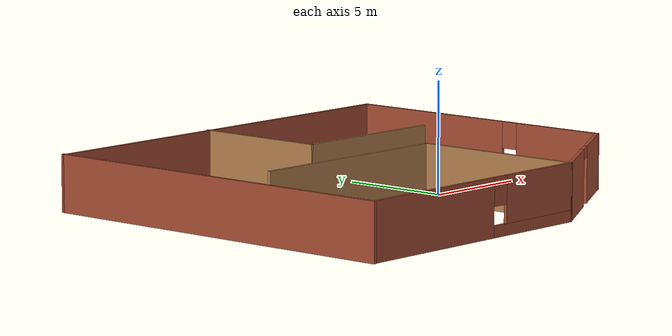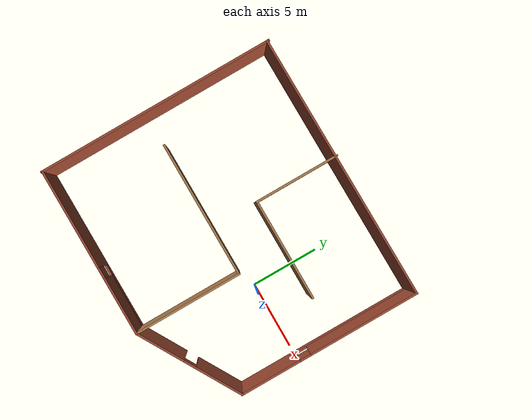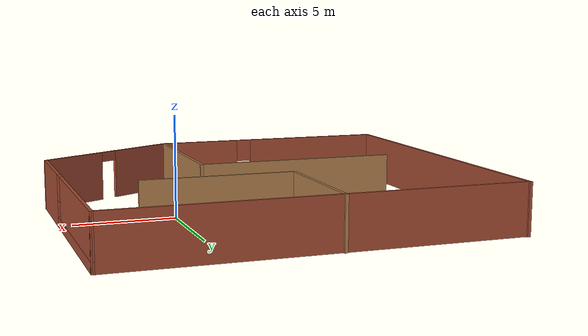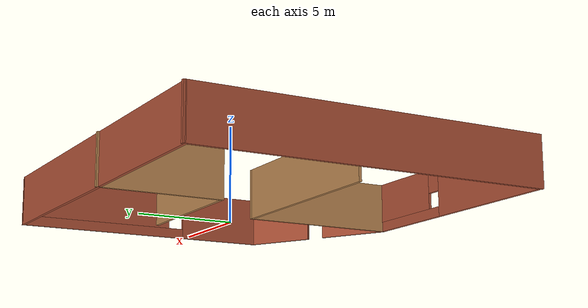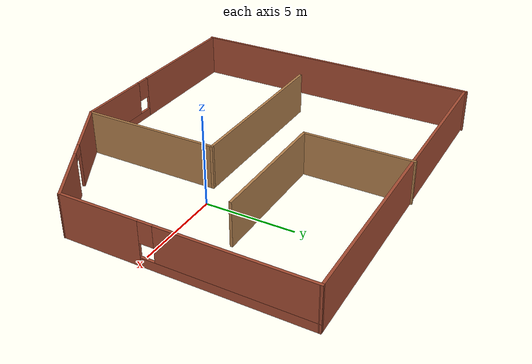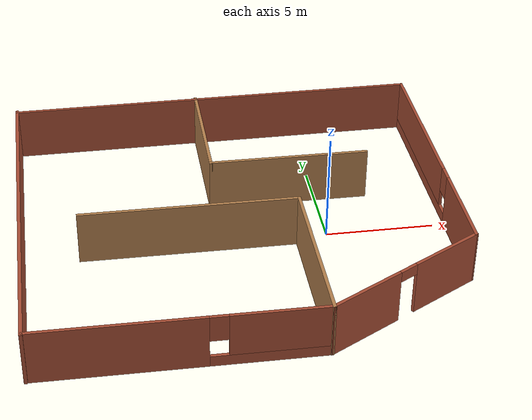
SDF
<?xml version='1.0'?>
<sdf version='1.6'>
  <model name='house'>
    <pose frame=''>-4.10834 0.329778 0 0 -0 0</pose>
    <link name='Wall_46'>
      <pose frame=''>-3.49095 -8.67909 0 0 -0 0</pose>
      <visual name='Wall_46_Visual_0'>
        <pose frame=''>-2.556 0 1.25 0 -0 0</pose>
        <geometry>
          <box>
            <size>7.38799 0.15 2.5</size>
          </box>
        </geometry>
        <material>
          <script>
            <uri>file://media/materials/scripts/gazebo.material</uri>
            <name>Gazebo/Bricks</name>
          </script>
          <ambient>0.643137 0 0 1</ambient>
        </material>
        <meta>
          <layer>0</layer>
        </meta>
      </visual>
      <collision name='Wall_46_Collision_0'>
        <geometry>
          <box>
            <size>7.38799 0.15 2.5</size>
          </box>
        </geometry>
        <pose frame=''>-2.556 0 1.25 0 -0 0</pose>
      </collision>
      <visual name='Wall_46_Visual_1'>
        <pose frame=''>3.694 0 0.25 0 -0 0</pose>
        <geometry>
          <box>
            <size>5.11201 0.15 0.5</size>
          </box>
        </geometry>
        <material>
          <script>
            <uri>file://media/materials/scripts/gazebo.material</uri>
            <name>Gazebo/Bricks</name>
          </script>
          <ambient>0.643137 0 0 1</ambient>
        </material>
        <meta>
          <layer>0</layer>
        </meta>
      </visual>
      <collision name='Wall_46_Collision_1'>
        <geometry>
          <box>
            <size>5.11201 0.15 0.5</size>
          </box>
        </geometry>
        <pose frame=''>3.694 0 0.25 0 -0 0</pose>
      </collision>
      <visual name='Wall_46_Visual_2'>
        <pose frame=''>4.094 0 1.5 0 -0 0</pose>
        <geometry>
          <box>
            <size>4.31201 0.15 2</size>
          </box>
        </geometry>
        <material>
          <script>
            <uri>file://media/materials/scripts/gazebo.material</uri>
            <name>Gazebo/Bricks</name>
          </script>
          <ambient>0.643137 0 0 1</ambient>
        </material>
        <meta>
          <layer>0</layer>
        </meta>
      </visual>
      <collision name='Wall_46_Collision_2'>
        <geometry>
          <box>
            <size>4.31201 0.15 2</size>
          </box>
        </geometry>
        <pose frame=''>4.094 0 1.5 0 -0 0</pose>
      </collision>
      <visual name='Wall_46_Visual_3'>
        <pose frame=''>1.53799 0 1.9 0 -0 0</pose>
        <geometry>
          <box>
            <size>0.8 0.15 1.2</size>
          </box>
        </geometry>
        <material>
          <script>
            <uri>file://media/materials/scripts/gazebo.material</uri>
            <name>Gazebo/Bricks</name>
          </script>
          <ambient>0.643137 0 0 1</ambient>
        </material>
        <meta>
          <layer>0</layer>
        </meta>
      </visual>
      <collision name='Wall_46_Collision_3'>
        <geometry>
          <box>
            <size>0.8 0.15 1.2</size>
          </box>
        </geometry>
        <pose frame=''>1.53799 0 1.9 0 -0 0</pose>
      </collision>
    </link>
    <link name='Wall_47'>
      <pose frame=''>6.19145 -6.65409 0 0 -0 0.523599</pose>
      <visual name='Wall_47_Visual_0'>
        <pose frame=''>-2.2694 0 1.25 0 -0 0</pose>
        <geometry>
          <box>
            <size>3.71119 0.15 2.5</size>
          </box>
        </geometry>
        <material>
          <script>
            <uri>file://media/materials/scripts/gazebo.material</uri>
            <name>Gazebo/Bricks</name>
          </script>
          <ambient>0.643137 0 0 1</ambient>
        </material>
        <meta>
          <layer>0</layer>
        </meta>
      </visual>
      <collision name='Wall_47_Collision_0'>
        <geometry>
          <box>
            <size>3.71119 0.15 2.5</size>
          </box>
        </geometry>
        <pose frame=''>-2.2694 0 1.25 0 -0 0</pose>
      </collision>
      <visual name='Wall_47_Visual_1'>
        <pose frame=''>2.30559 0 1.25 0 -0 0</pose>
        <geometry>
          <box>
            <size>3.63881 0.15 2.5</size>
          </box>
        </geometry>
        <material>
          <script>
            <uri>file://media/materials/scripts/gazebo.material</uri>
            <name>Gazebo/Bricks</name>
          </script>
          <ambient>0.643137 0 0 1</ambient>
        </material>
        <meta>
          <layer>0</layer>
        </meta>
      </visual>
      <collision name='Wall_47_Collision_1'>
        <geometry>
          <box>
            <size>3.63881 0.15 2.5</size>
          </box>
        </geometry>
        <pose frame=''>2.30559 0 1.25 0 -0 0</pose>
      </collision>
      <visual name='Wall_47_Visual_2'>
        <pose frame=''>0.036191 0 2.25 0 -0 0</pose>
        <geometry>
          <box>
            <size>0.9 0.15 0.5</size>
          </box>
        </geometry>
        <material>
          <script>
            <uri>file://media/materials/scripts/gazebo.material</uri>
            <name>Gazebo/Bricks</name>
          </script>
          <ambient>0.643137 0 0 1</ambient>
        </material>
        <meta>
          <layer>0</layer>
        </meta>
      </visual>
      <collision name='Wall_47_Collision_2'>
        <geometry>
          <box>
            <size>0.9 0.15 0.5</size>
          </box>
        </geometry>
        <pose frame=''>0.036191 0 2.25 0 -0 0</pose>
      </collision>
    </link>
    <link name='Wall_48'>
      <pose frame=''>9.69885 2.04591 0 0 -0 1.5708</pose>
      <visual name='Wall_48_Visual_0'>
        <pose frame=''>-4.48832 0 1.25 0 -0 0</pose>
        <geometry>
          <box>
            <size>4.52337 0.15 2.5</size>
          </box>
        </geometry>
        <material>
          <script>
            <uri>file://media/materials/scripts/gazebo.material</uri>
            <name>Gazebo/Bricks</name>
          </script>
          <ambient>0.643137 0 0 1</ambient>
        </material>
        <meta>
          <layer>0</layer>
        </meta>
      </visual>
      <collision name='Wall_48_Collision_0'>
        <geometry>
          <box>
            <size>4.52337 0.15 2.5</size>
          </box>
        </geometry>
        <pose frame=''>-4.48832 0 1.25 0 -0 0</pose>
      </collision>
      <visual name='Wall_48_Visual_1'>
        <pose frame=''>2.26168 0 0.25 0 -0 0</pose>
        <geometry>
          <box>
            <size>8.97663 0.15 0.5</size>
          </box>
        </geometry>
        <material>
          <script>
            <uri>file://media/materials/scripts/gazebo.material</uri>
            <name>Gazebo/Bricks</name>
          </script>
          <ambient>0.643137 0 0 1</ambient>
        </material>
        <meta>
          <layer>0</layer>
        </meta>
      </visual>
      <collision name='Wall_48_Collision_1'>
        <geometry>
          <box>
            <size>8.97663 0.15 0.5</size>
          </box>
        </geometry>
        <pose frame=''>2.26168 0 0.25 0 -0 0</pose>
      </collision>
      <visual name='Wall_48_Visual_2'>
        <pose frame=''>2.66168 0 1.5 0 -0 0</pose>
        <geometry>
          <box>
            <size>8.17663 0.15 2</size>
          </box>
        </geometry>
        <material>
          <script>
            <uri>file://media/materials/scripts/gazebo.material</uri>
            <name>Gazebo/Bricks</name>
          </script>
          <ambient>0.643137 0 0 1</ambient>
        </material>
        <meta>
          <layer>0</layer>
        </meta>
      </visual>
      <collision name='Wall_48_Collision_2'>
        <geometry>
          <box>
            <size>8.17663 0.15 2</size>
          </box>
        </geometry>
        <pose frame=''>2.66168 0 1.5 0 -0 0</pose>
      </collision>
      <visual name='Wall_48_Visual_3'>
        <pose frame=''>-1.82663 0 1.9 0 -0 0</pose>
        <geometry>
          <box>
            <size>0.8 0.15 1.2</size>
          </box>
        </geometry>
        <material>
          <script>
            <uri>file://media/materials/scripts/gazebo.material</uri>
            <name>Gazebo/Bricks</name>
          </script>
          <ambient>0.643137 0 0 1</ambient>
        </material>
        <meta>
          <layer>0</layer>
        </meta>
      </visual>
      <collision name='Wall_48_Collision_3'>
        <geometry>
          <box>
            <size>0.8 0.15 1.2</size>
          </box>
        </geometry>
        <pose frame=''>-1.82663 0 1.9 0 -0 0</pose>
      </collision>
    </link>
    <link name='Wall_49'>
      <collision name='Wall_49_Collision'>
        <geometry>
          <box>
            <size>19.575 0.15 2.5</size>
          </box>
        </geometry>
        <pose frame=''>0 0 1.25 0 -0 0</pose>
      </collision>
      <visual name='Wall_49_Visual'>
        <pose frame=''>0 0 1.25 0 -0 0</pose>
        <geometry>
          <box>
            <size>19.575 0.15 2.5</size>
          </box>
        </geometry>
        <material>
          <script>
            <uri>file://media/materials/scripts/gazebo.material</uri>
            <name>Gazebo/Bricks</name>
          </script>
          <ambient>0.643137 0 0 1</ambient>
        </material>
        <meta>
          <layer>0</layer>
        </meta>
      </visual>
      <pose frame=''>-0.013535 8.62839 0 0 -0 -3.13207</pose>
    </link>
    <link name='Wall_52'>
      <collision name='Wall_52_Collision'>
        <geometry>
          <box>
            <size>17.5 0.15 2.5</size>
          </box>
        </geometry>
        <pose frame=''>0 0 1.25 0 -0 0</pose>
      </collision>
      <visual name='Wall_52_Visual'>
        <pose frame=''>0 0 1.25 0 -0 0</pose>
        <geometry>
          <box>
            <size>17.5 0.15 2.5</size>
          </box>
        </geometry>
        <material>
          <script>
            <uri>file://media/materials/scripts/gazebo.material</uri>
            <name>Gazebo/Bricks</name>
          </script>
          <ambient>0.643137 0 0 1</ambient>
        </material>
        <meta>
          <layer>0</layer>
        </meta>
      </visual>
      <pose frame=''>-9.72592 -0.046615 0 0 -0 -1.5708</pose>
    </link>
    <link name='Wall_54'>
      <collision name='Wall_54_Collision'>
        <geometry>
          <box>
            <size>8 0.15 2.5</size>
          </box>
        </geometry>
        <pose frame=''>0 0 1.25 0 -0 0</pose>
      </collision>
      <visual name='Wall_54_Visual'>
        <pose frame=''>0 0 1.25 0 -0 0</pose>
        <geometry>
          <box>
            <size>8 0.15 2.5</size>
          </box>
        </geometry>
        <material>
          <script>
            <uri>file://media/materials/scripts/gazebo.material</uri>
            <name>Gazebo/Wood</name>
          </script>
          <ambient>0.807843 0.360784 0 1</ambient>
        </material>
        <meta>
          <layer>0</layer>
        </meta>
      </visual>
      <pose frame=''>2.68405 -4.75409 0 0 -0 1.5708</pose>
    </link>
    <link name='Wall_55'>
      <collision name='Wall_55_Collision'>
        <geometry>
          <box>
            <size>10 0.15 2.5</size>
          </box>
        </geometry>
        <pose frame=''>0 0 1.25 0 -0 0</pose>
      </collision>
      <visual name='Wall_55_Visual'>
        <pose frame=''>0 0 1.25 0 -0 0</pose>
        <geometry>
          <box>
            <size>10 0.15 2.5</size>
          </box>
        </geometry>
        <material>
          <script>
            <uri>file://media/materials/scripts/gazebo.material</uri>
            <name>Gazebo/Wood</name>
          </script>
          <ambient>0.807843 0.360784 0 1</ambient>
        </material>
        <meta>
          <layer>0</layer>
        </meta>
      </visual>
      <pose frame=''>-2.24095 -0.829092 0 0 -0 3.14159</pose>
    </link>
    <link name='Wall_57'>
      <collision name='Wall_57_Collision'>
        <geometry>
          <box>
            <size>6.25 0.15 2.5</size>
          </box>
        </geometry>
        <pose frame=''>0 0 1.25 0 -0 0</pose>
      </collision>
      <visual name='Wall_57_Visual'>
        <pose frame=''>0 0 1.25 0 -0 0</pose>
        <geometry>
          <box>
            <size>6.25 0.15 2.5</size>
          </box>
        </geometry>
        <material>
          <script>
            <uri>file://media/materials/scripts/gazebo.material</uri>
            <name>Gazebo/Wood</name>
          </script>
          <ambient>0.807843 0.360784 0 1</ambient>
        </material>
        <meta>
          <layer>0</layer>
        </meta>
      </visual>
      <pose frame=''>-0.858575 5.66622 0 0 -0 -1.5708</pose>
    </link>
    <link name='Wall_58'>
      <collision name='Wall_58_Collision'>
        <geometry>
          <box>
            <size>7.5 0.15 2.5</size>
          </box>
        </geometry>
        <pose frame=''>0 0 1.25 0 -0 0</pose>
      </collision>
      <visual name='Wall_58_Visual'>
        <pose frame=''>0 0 1.25 0 -0 0</pose>
        <geometry>
          <box>
            <size>7.5 0.15 2.5</size>
          </box>
        </geometry>
        <material>
          <script>
            <uri>file://media/materials/scripts/gazebo.material</uri>
            <name>Gazebo/Wood</name>
          </script>
          <ambient>0.807843 0.360784 0 1</ambient>
        </material>
        <meta>
          <layer>0</layer>
        </meta>
      </visual>
      <pose frame=''>2.81643 2.61622 0 0 -0 0</pose>
    </link>
    <static>1</static>
  </model>
</sdf>
